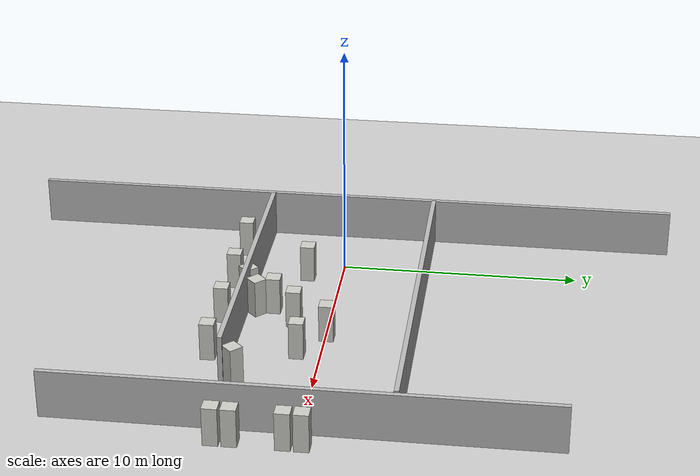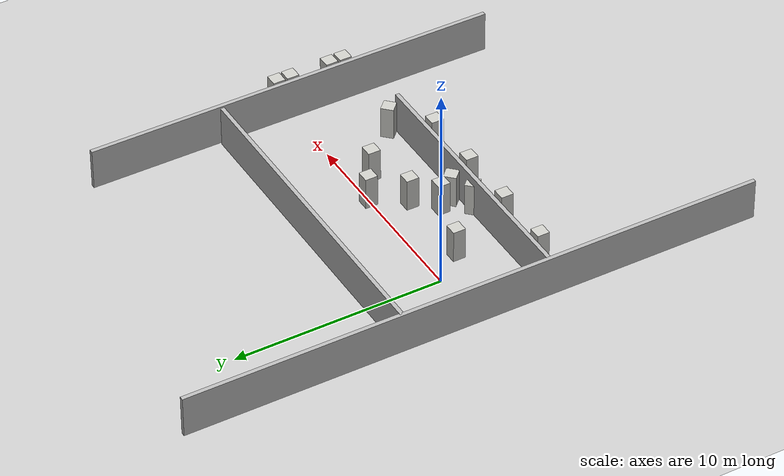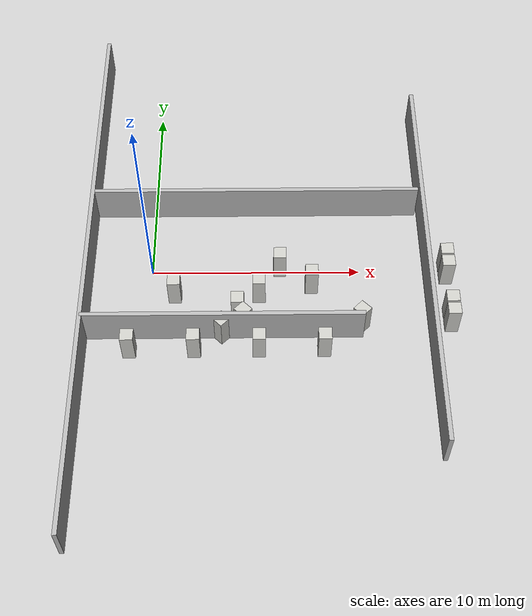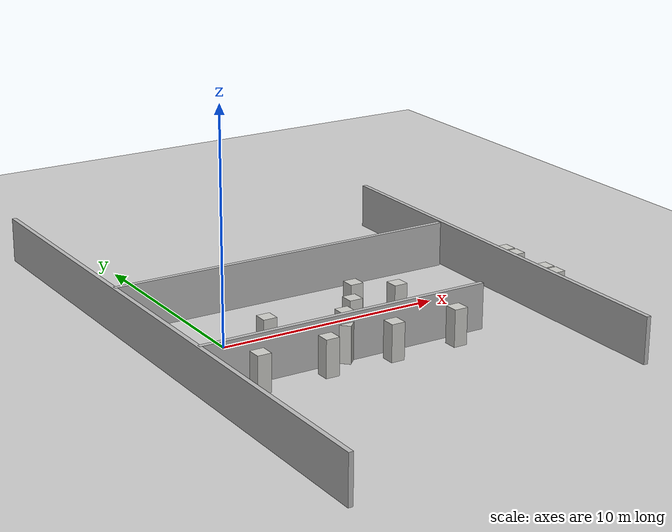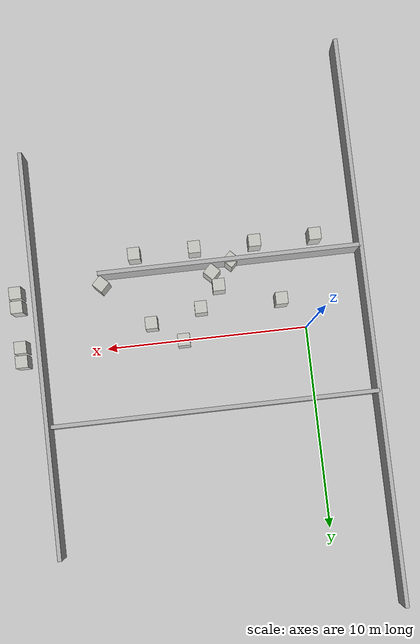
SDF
<sdf version="1.7">
 <world name="default">
  <light name="sun" type="directional">
   <pose>0 0 10 0 -0 0</pose>
   <diffuse>0.8 0.8 0.8 1</diffuse>
   <specular>0.2 0.2 0.2 1</specular>
   <attenuation>
    <range>1000</range>
    <constant>0.9</constant>
    <linear>0.01</linear>
    <quadratic>0.001</quadratic>
   </attenuation>
   <direction>-0.5 0.1 -0.9</direction>
   <spot><inner_angle>0</inner_angle><outer_angle>0</outer_angle><falloff>0</falloff></spot>
  </light>
  <model name="ground_plane">
   <static>1</static>
   <link name="link">
    <collision name="collision">
     <geometry><plane><normal>0 0 1</normal><size>100 100</size></plane></geometry>
     <surface>
      <contact><collide_bitmask>65535</collide_bitmask></contact>
      <friction><ode><mu>100</mu><mu2>50</mu2></ode></friction>
     </surface>
    </collision>
    <visual name="visual">
     <cast_shadows>0</cast_shadows>
     <geometry><plane><normal>0 0 1</normal><size>100 100</size></plane></geometry>
     <material>
      <script><uri>file://media/materials/scripts/gazebo.material</uri><name>Gazebo/Grey</name></script>
     </material>
    </visual>
   </link>
  </model>
  <gravity>0 0 -9.8</gravity>
  <magnetic_field>6e-06 2.3e-05 -4.2e-05</magnetic_field>
  <atmosphere type="adiabatic"/>
  <physics type="ode">
   <max_step_size>0.001</max_step_size>
   <real_time_factor>1</real_time_factor>
   <real_time_update_rate>1000</real_time_update_rate>
  </physics>
  <scene><ambient>0.4 0.4 0.4 1</ambient><background>0.7 0.7 0.7 1</background><shadows>1</shadows></scene>
  <spherical_coordinates>
   <surface_model>EARTH_WGS84</surface_model>
   <latitude_deg>0</latitude_deg>
   <longitude_deg>0</longitude_deg>
   <elevation>0</elevation>
   <heading_deg>0</heading_deg>
  </spherical_coordinates>
  <model name="left_wall">
   <static>true</static>
   <pose>5.0 3.6 1 0 0 0</pose>
   <link name="link">
    <collision name="collision"><geometry><box><size>16 0.2 2</size></box></geometry></collision>
    <visual name="visual"><geometry><box><size>16 0.2 2</size></box></geometry></visual>
   </link>
  </model>
  <model name="right_wall">
   <static>true</static>
   <pose>3.5 -3.6 1 0 0 0</pose>
   <link name="link">
    <collision name="collision"><geometry><box><size>13 0.2 2</size></box></geometry></collision>
    <visual name="visual"><geometry><box><size>13 0.2 2</size></box></geometry></visual>
   </link>
  </model>
  <model name="back_wall">
   <static>true</static>
   <pose>-3.0 0 1 0 0 0</pose>
   <link name="link">
    <collision name="collision"><geometry><box><size>0.2 28 2</size></box></geometry></collision>
    <visual name="visual"><geometry><box><size>0.2 28 2</size></box></geometry></visual>
   </link>
  </model>
  <model name="front_wall">
   <static>true</static>
   <pose>13.2 0 1 0 0 0</pose>
   <link name="link">
    <collision name="collision"><geometry><box><size>0.2 20 2</size></box></geometry></collision>
    <visual name="visual"><geometry><box><size>0.2 20 2</size></box></geometry></visual>
   </link>
  </model>
  <model name="box_1_1_2">
   <pose>2.0 0.0 0 0 -0 0</pose>
   <link name="Wall_0">
    <collision name="Wall_0_Collision">
     <geometry><box><size>0.6 0.6 1.6</size></box></geometry>
     <pose>0 0 0.8 0 -0 0</pose>
    </collision>
    <visual name="Wall_0_Visual">
     <pose>0 0 0.8 0 -0 0</pose>
     <geometry><box><size>0.6 0.6 1.6</size></box></geometry>
     <material>
      <script><uri>file://media/materials/scripts/gazebo.material</uri><name>Gazebo/CeilingTiled</name></script>
      <ambient>0.921569 0.807843 0.615686 1</ambient>
     </material>
     <meta><layer>0</layer></meta>
    </visual>
    <pose>-0.85 -1.44 0 0 -0 0</pose>
   </link>
   <static>1</static>
  </model>
  <model name="box_1_1_2_1">
   <pose>3.0 -2.0 0 0 -0 0.785</pose>
   <link name="Wall_0">
    <collision name="Wall_0_Collision">
     <geometry><box><size>0.6 0.6 1.6</size></box></geometry>
     <pose>0 0 0.8 0 -0 0</pose>
    </collision>
    <visual name="Wall_0_Visual">
     <pose>0 0 0.8 0 -0 0</pose>
     <geometry><box><size>0.6 0.6 1.6</size></box></geometry>
     <material>
      <script><uri>file://media/materials/scripts/gazebo.material</uri><name>Gazebo/CeilingTiled</name></script>
      <ambient>0.921569 0.807843 0.615686 1</ambient>
     </material>
     <meta><layer>0</layer></meta>
    </visual>
    <pose>-0.85 -1.44 0 0 -0 0</pose>
   </link>
   <static>1</static>
  </model>
  <model name="box_1_1_2_2">
   <pose>5.0 -1.0 0 0 -0 0</pose>
   <link name="Wall_0">
    <collision name="Wall_0_Collision">
     <geometry><box><size>0.6 0.6 1.6</size></box></geometry>
     <pose>0 0 0.8 0 -0 0</pose>
    </collision>
    <visual name="Wall_0_Visual">
     <pose>0 0 0.8 0 -0 0</pose>
     <geometry><box><size>0.6 0.6 1.6</size></box></geometry>
     <material>
      <script><uri>file://media/materials/scripts/gazebo.material</uri><name>Gazebo/CeilingTiled</name></script>
      <ambient>0.921569 0.807843 0.615686 1</ambient>
     </material>
     <meta><layer>0</layer></meta>
    </visual>
    <pose>-0.85 -1.44 0 0 -0 0</pose>
   </link>
   <static>1</static>
  </model>
  <model name="box_1_1_2_3">
   <pose>6.0 0.0 0 0 -0 0</pose>
   <link name="Wall_0">
    <collision name="Wall_0_Collision">
     <geometry><box><size>0.6 0.6 1.6</size></box></geometry>
     <pose>0 0 0.8 0 -0 0</pose>
    </collision>
    <visual name="Wall_0_Visual">
     <pose>0 0 0.8 0 -0 0</pose>
     <geometry><box><size>0.6 0.6 1.6</size></box></geometry>
     <material>
      <script><uri>file://media/materials/scripts/gazebo.material</uri><name>Gazebo/CeilingTiled</name></script>
      <ambient>0.921569 0.807843 0.615686 1</ambient>
     </material>
     <meta><layer>0</layer></meta>
    </visual>
    <pose>-0.85 -1.44 0 0 -0 0</pose>
   </link>
   <static>1</static>
  </model>
  <model name="box_1_1_2_4">
   <pose>8.5 0.5 0 0 -0 0</pose>
   <link name="Wall_0">
    <collision name="Wall_0_Collision">
     <geometry><box><size>0.6 0.6 1.6</size></box></geometry>
     <pose>0 0 0.8 0 -0 0</pose>
    </collision>
    <visual name="Wall_0_Visual">
     <pose>0 0 0.8 0 -0 0</pose>
     <geometry><box><size>0.6 0.6 1.6</size></box></geometry>
     <material>
      <script><uri>file://media/materials/scripts/gazebo.material</uri><name>Gazebo/CeilingTiled</name></script>
      <ambient>0.921569 0.807843 0.615686 1</ambient>
     </material>
     <meta><layer>0</layer></meta>
    </visual>
    <pose>-0.85 -1.44 0 0 -0 0</pose>
   </link>
   <static>1</static>
  </model>
  <model name="box_1_1_2_5">
   <pose>7.0 1.5 0 0 -0 0</pose>
   <link name="Wall_0">
    <collision name="Wall_0_Collision">
     <geometry><box><size>0.6 0.6 1.6</size></box></geometry>
     <pose>0 0 0.8 0 -0 0</pose>
    </collision>
    <visual name="Wall_0_Visual">
     <pose>0 0 0.8 0 -0 0</pose>
     <geometry><box><size>0.6 0.6 1.6</size></box></geometry>
     <material>
      <script><uri>file://media/materials/scripts/gazebo.material</uri><name>Gazebo/CeilingTiled</name></script>
      <ambient>0.921569 0.807843 0.615686 1</ambient>
     </material>
     <meta><layer>0</layer></meta>
    </visual>
    <pose>-0.85 -1.44 0 0 -0 0</pose>
   </link>
   <static>1</static>
  </model>
  <model name="box_1_1_2_6">
   <pose>9.5 -1.5 0 0 -0 0.785</pose>
   <link name="Wall_0">
    <collision name="Wall_0_Collision">
     <geometry><box><size>0.6 0.6 1.6</size></box></geometry>
     <pose>0 0 0.8 0 -0 0</pose>
    </collision>
    <visual name="Wall_0_Visual">
     <pose>0 0 0.8 0 -0 0</pose>
     <geometry><box><size>0.6 0.6 1.6</size></box></geometry>
     <material>
      <script><uri>file://media/materials/scripts/gazebo.material</uri><name>Gazebo/CeilingTiled</name></script>
      <ambient>0.921569 0.807843 0.615686 1</ambient>
     </material>
     <meta><layer>0</layer></meta>
    </visual>
    <pose>-0.85 -1.44 0 0 -0 0</pose>
   </link>
   <static>1</static>
  </model>
  <model name="box_1_1_2_7">
   <pose>4.0 -1.5 0 0 -0 0.785</pose>
   <link name="Wall_0">
    <collision name="Wall_0_Collision">
     <geometry><box><size>0.6 0.6 1.6</size></box></geometry>
     <pose>0 0 0.8 0 -0 0</pose>
    </collision>
    <visual name="Wall_0_Visual">
     <pose>0 0 0.8 0 -0 0</pose>
     <geometry><box><size>0.6 0.6 1.6</size></box></geometry>
     <material>
      <script><uri>file://media/materials/scripts/gazebo.material</uri><name>Gazebo/CeilingTiled</name></script>
      <ambient>0.921569 0.807843 0.615686 1</ambient>
     </material>
     <meta><layer>0</layer></meta>
    </visual>
    <pose>-0.85 -1.44 0 0 -0 0</pose>
   </link>
   <static>1</static>
  </model>
  <model name="box_1_1_2_8">
   <pose>0.0 -3.0 0 0 -0 0</pose>
   <link name="Wall_0">
    <collision name="Wall_0_Collision">
     <geometry><box><size>0.6 0.6 1.6</size></box></geometry>
     <pose>0 0 0.8 0 -0 0</pose>
    </collision>
    <visual name="Wall_0_Visual">
     <pose>0 0 0.8 0 -0 0</pose>
     <geometry><box><size>0.6 0.6 1.6</size></box></geometry>
     <material>
      <script><uri>file://media/materials/scripts/gazebo.material</uri><name>Gazebo/CeilingTiled</name></script>
      <ambient>0.921569 0.807843 0.615686 1</ambient>
     </material>
     <meta><layer>0</layer></meta>
    </visual>
    <pose>-0.85 -1.44 0 0 -0 0</pose>
   </link>
   <static>1</static>
  </model>
  <model name="box_1_1_2_9">
   <pose>3.0 -3.0 0 0 -0 0</pose>
   <link name="Wall_0">
    <collision name="Wall_0_Collision">
     <geometry><box><size>0.6 0.6 1.6</size></box></geometry>
     <pose>0 0 0.8 0 -0 0</pose>
    </collision>
    <visual name="Wall_0_Visual">
     <pose>0 0 0.8 0 -0 0</pose>
     <geometry><box><size>0.6 0.6 1.6</size></box></geometry>
     <material>
      <script><uri>file://media/materials/scripts/gazebo.material</uri><name>Gazebo/CeilingTiled</name></script>
      <ambient>0.921569 0.807843 0.615686 1</ambient>
     </material>
     <meta><layer>0</layer></meta>
    </visual>
    <pose>-0.85 -1.44 0 0 -0 0</pose>
   </link>
   <static>1</static>
  </model>
  <model name="box_1_1_2_10">
   <pose>6.0 -3.0 0 0 -0 0</pose>
   <link name="Wall_0">
    <collision name="Wall_0_Collision">
     <geometry><box><size>0.6 0.6 1.6</size></box></geometry>
     <pose>0 0 0.8 0 -0 0</pose>
    </collision>
    <visual name="Wall_0_Visual">
     <pose>0 0 0.8 0 -0 0</pose>
     <geometry><box><size>0.6 0.6 1.6</size></box></geometry>
     <material>
      <script><uri>file://media/materials/scripts/gazebo.material</uri><name>Gazebo/CeilingTiled</name></script>
      <ambient>0.921569 0.807843 0.615686 1</ambient>
     </material>
     <meta><layer>0</layer></meta>
    </visual>
    <pose>-0.85 -1.44 0 0 -0 0</pose>
   </link>
   <static>1</static>
  </model>
  <model name="box_1_1_2_11">
   <pose>9.0 -3.0 0 0 -0 0</pose>
   <link name="Wall_0">
    <collision name="Wall_0_Collision">
     <geometry><box><size>0.6 0.6 1.6</size></box></geometry>
     <pose>0 0 0.8 0 -0 0</pose>
    </collision>
    <visual name="Wall_0_Visual">
     <pose>0 0 0.8 0 -0 0</pose>
     <geometry><box><size>0.6 0.6 1.6</size></box></geometry>
     <material>
      <script><uri>file://media/materials/scripts/gazebo.material</uri><name>Gazebo/CeilingTiled</name></script>
      <ambient>0.921569 0.807843 0.615686 1</ambient>
     </material>
     <meta><layer>0</layer></meta>
    </visual>
    <pose>-0.85 -1.44 0 0 -0 0</pose>
   </link>
   <static>1</static>
  </model>
  <model name="box_1_1_2_12">
   <pose>15.0 1.0 0 0 -0 0</pose>
   <link name="Wall_0">
    <collision name="Wall_0_Collision">
     <geometry><box><size>0.6 0.6 1.6</size></box></geometry>
     <pose>0 0 0.8 0 -0 0</pose>
    </collision>
    <visual name="Wall_0_Visual">
     <pose>0 0 0.8 0 -0 0</pose>
     <geometry><box><size>0.6 0.6 1.6</size></box></geometry>
     <material>
      <script><uri>file://media/materials/scripts/gazebo.material</uri><name>Gazebo/CeilingTiled</name></script>
      <ambient>0.921569 0.807843 0.615686 1</ambient>
     </material>
     <meta><layer>0</layer></meta>
    </visual>
    <pose>-0.85 -1.44 0 0 -0 0</pose>
   </link>
   <static>1</static>
  </model>
  <model name="box_1_1_2_13">
   <pose>15.0 -1.0 0 0 -0 0</pose>
   <link name="Wall_0">
    <collision name="Wall_0_Collision">
     <geometry><box><size>0.6 0.6 1.6</size></box></geometry>
     <pose>0 0 0.8 0 -0 0</pose>
    </collision>
    <visual name="Wall_0_Visual">
     <pose>0 0 0.8 0 -0 0</pose>
     <geometry><box><size>0.6 0.6 1.6</size></box></geometry>
     <material>
      <script><uri>file://media/materials/scripts/gazebo.material</uri><name>Gazebo/CeilingTiled</name></script>
      <ambient>0.921569 0.807843 0.615686 1</ambient>
     </material>
     <meta><layer>0</layer></meta>
    </visual>
    <pose>-0.85 -1.44 0 0 -0 0</pose>
   </link>
   <static>1</static>
  </model>
  <model name="box_1_1_2_14">
   <pose>15.0 -1.7 0 0 -0 0</pose>
   <link name="Wall_0">
    <collision name="Wall_0_Collision">
     <geometry><box><size>0.6 0.6 1.6</size></box></geometry>
     <pose>0 0 0.8 0 -0 0</pose>
    </collision>
    <visual name="Wall_0_Visual">
     <pose>0 0 0.8 0 -0 0</pose>
     <geometry><box><size>0.6 0.6 1.6</size></box></geometry>
     <material>
      <script><uri>file://media/materials/scripts/gazebo.material</uri><name>Gazebo/CeilingTiled</name></script>
      <ambient>0.921569 0.807843 0.615686 1</ambient>
     </material>
     <meta><layer>0</layer></meta>
    </visual>
    <pose>-0.85 -1.44 0 0 -0 0</pose>
   </link>
   <static>1</static>
  </model>
  <model name="box_1_1_2_15">
   <pose>15.0 1.7 0 0 -0 0</pose>
   <link name="Wall_0">
    <collision name="Wall_0_Collision">
     <geometry><box><size>0.6 0.6 1.6</size></box></geometry>
     <pose>0 0 0.8 0 -0 0</pose>
    </collision>
    <visual name="Wall_0_Visual">
     <pose>0 0 0.8 0 -0 0</pose>
     <geometry><box><size>0.6 0.6 1.6</size></box></geometry>
     <material>
      <script><uri>file://media/materials/scripts/gazebo.material</uri><name>Gazebo/CeilingTiled</name></script>
      <ambient>0.921569 0.807843 0.615686 1</ambient>
     </material>
     <meta><layer>0</layer></meta>
    </visual>
    <pose>-0.85 -1.44 0 0 -0 0</pose>
   </link>
   <static>1</static>
  </model>
 </world>
</sdf>
